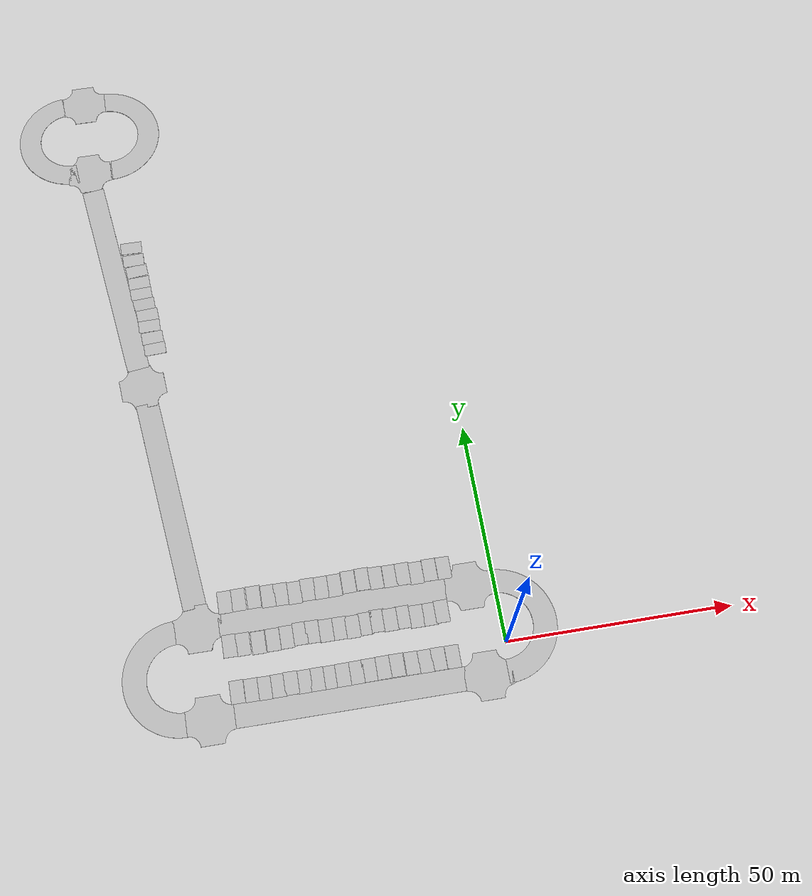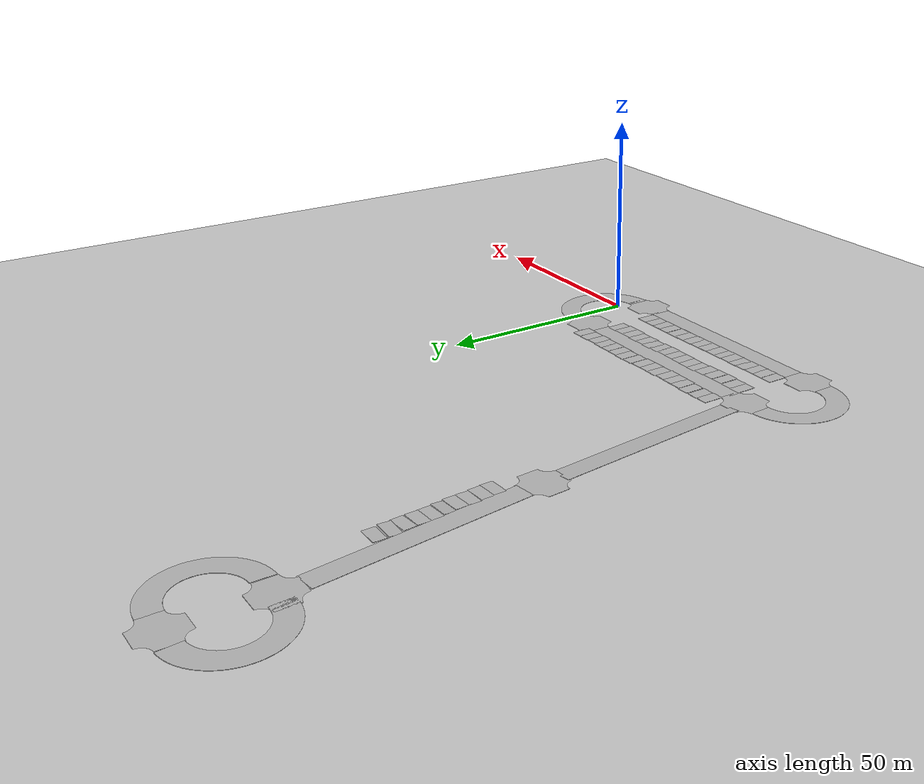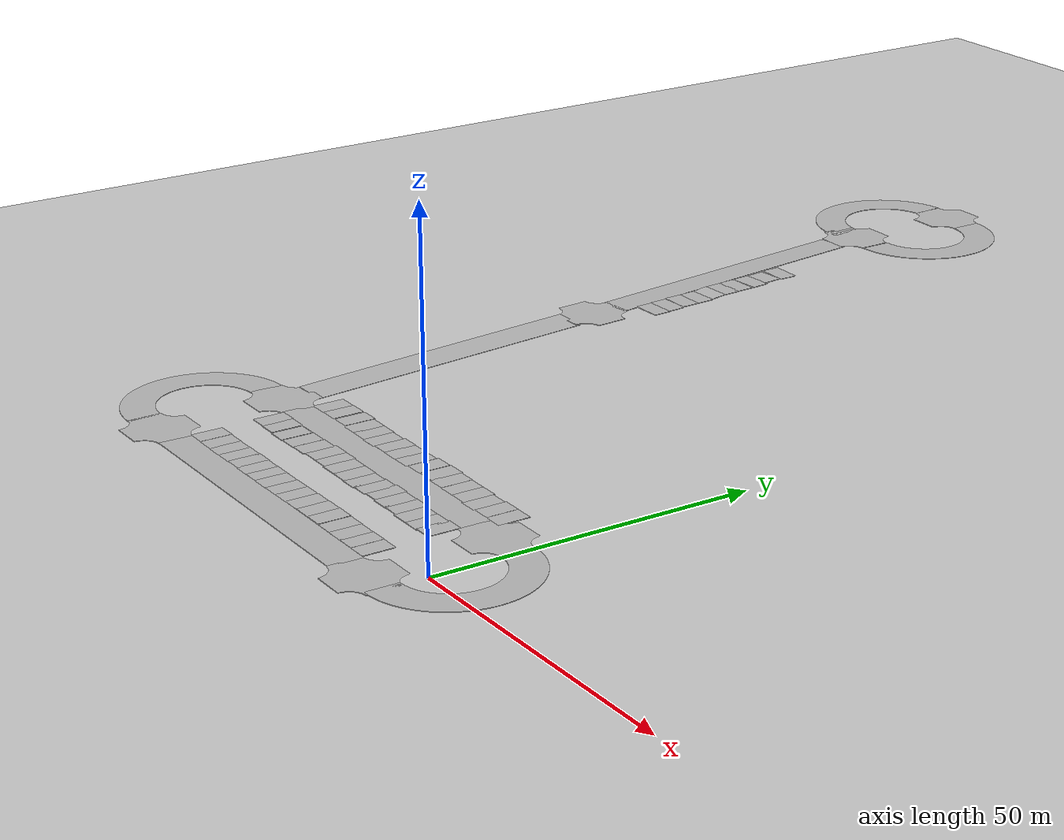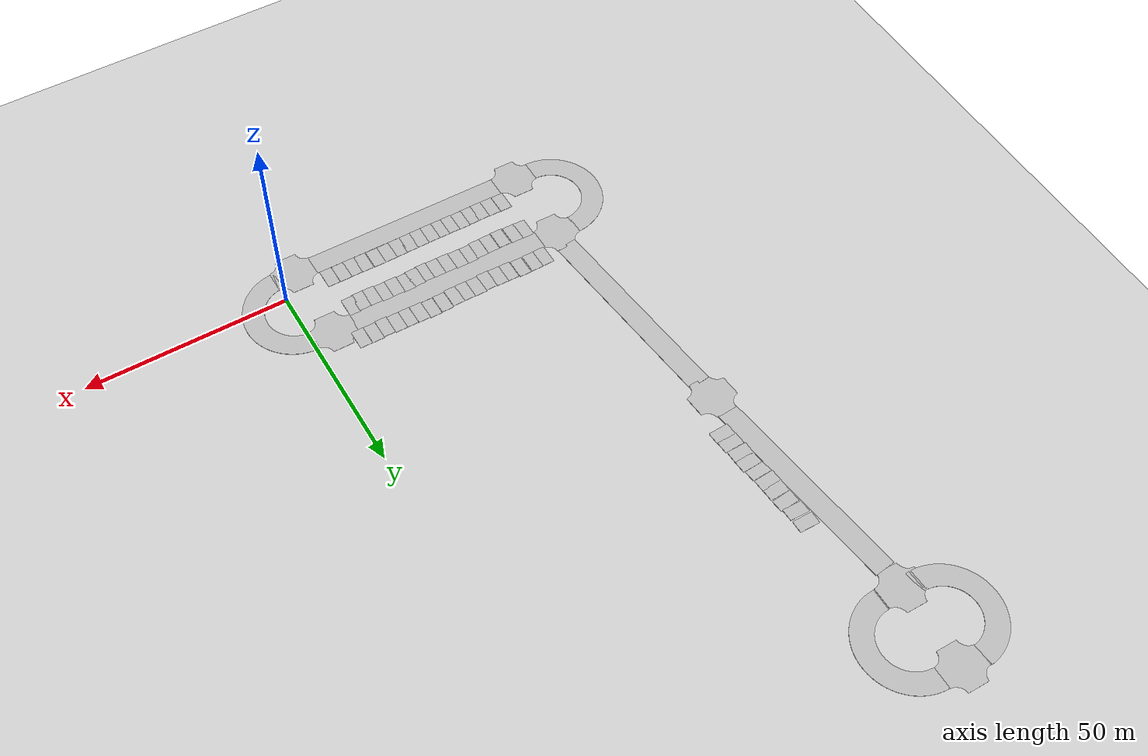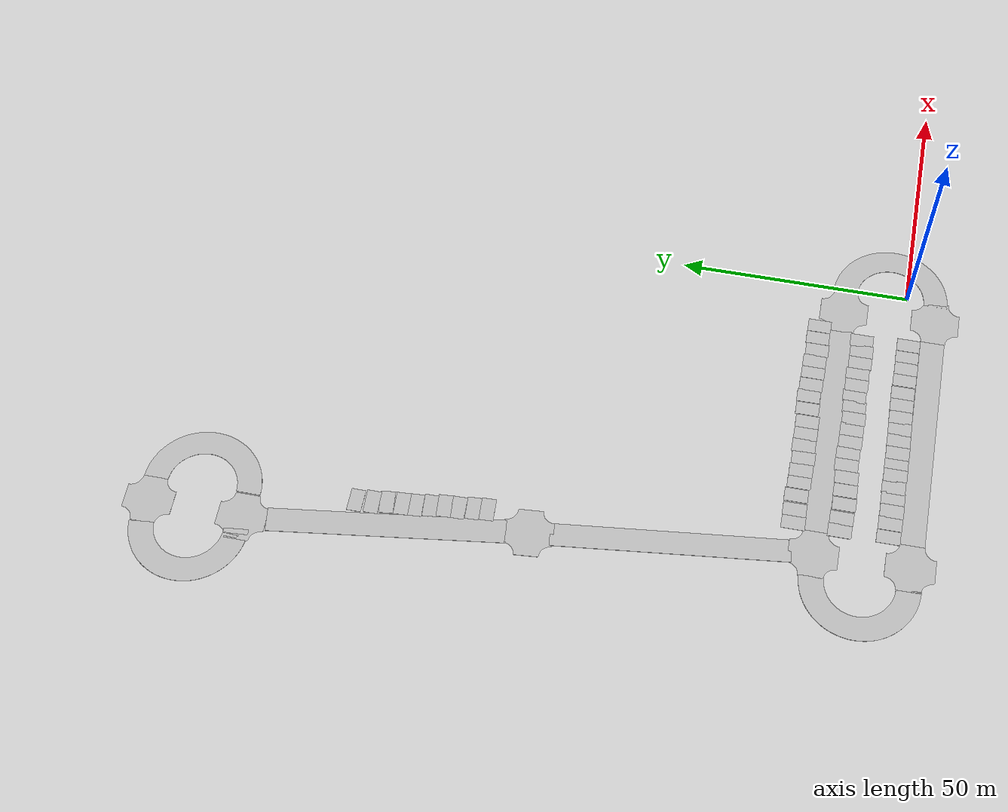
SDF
<sdf version="1.6">
 <world name="default">
  <light name="sun" type="directional">
   <pose>0 0 10 0 -0 0</pose>
   <diffuse>0.8 0.8 0.8 1</diffuse>
   <specular>0.2 0.2 0.2 1</specular>
   <attenuation>
    <range>1000</range>
    <constant>0.9</constant>
    <linear>0.01</linear>
    <quadratic>0.001</quadratic>
   </attenuation>
   <direction>-0.5 0.1 -0.9</direction>
  </light>
  <model name="ground_plane">
   <static>1</static>
   <link name="link">
    <collision name="collision">
     <geometry><plane><normal>0 0 1</normal><size>100 100</size></plane></geometry>
     <surface><friction><ode><mu>100</mu><mu2>50</mu2></ode></friction></surface>
    </collision>
    <visual name="visual">
     <cast_shadows>0</cast_shadows>
     <geometry><plane><normal>0 0 1</normal><size>100 100</size></plane></geometry>
     <material>
      <script><uri>file://media/materials/scripts/gazebo.material</uri><name>Gazebo/Grey</name></script>
     </material>
    </visual>
   </link>
  </model>
  <gravity>0 0 -9.8</gravity>
  <magnetic_field>6e-06 2.3e-05 -4.2e-05</magnetic_field>
  <atmosphere type="adiabatic"/>
  <physics name="default_physics" default="0" type="ode">
   <max_step_size>0.001</max_step_size>
   <real_time_factor>1</real_time_factor>
   <real_time_update_rate>1000</real_time_update_rate>
  </physics>
  <scene><ambient>0.4 0.4 0.4 1</ambient><background>0.7 0.7 0.7 1</background><shadows>1</shadows></scene>
  <spherical_coordinates>
   <surface_model>EARTH_WGS84</surface_model>
   <latitude_deg>0</latitude_deg>
   <longitude_deg>0</longitude_deg>
   <elevation>0</elevation>
   <heading_deg>0</heading_deg>
  </spherical_coordinates>
  <model name="curved_road_10">
   <pose>-0.754955 3.69079 0 0 -0 1.56526</pose>
   <static>1</static>
   <link name="link">
    <inertial>
     <mass>1</mass>
     <inertia><ixx>1</ixx><iyy>1</iyy><izz>1</izz><ixy>0</ixy><ixz>0</ixz><iyz>0</iyz></inertia>
    </inertial>
    <visual name="visual">
     <geometry><mesh><uri>model://curved_road_10/meshes/curved_road_10.dae</uri></mesh></geometry>
    </visual>
    <collision name="collision">
     <geometry><mesh><uri>model://curved_road_10/meshes/curved_road_10.dae</uri></mesh></geometry>
    </collision>
   </link>
  </model>
  <model name="road_intersection">
   <pose>-5.04531 -6.53328 0 0 -0 0</pose>
   <static>1</static>
   <link name="link">
    <visual name="visual">
     <geometry><mesh><uri>model://road_intersection/meshes/road_intersection.dae</uri></mesh></geometry>
    </visual>
    <collision name="collision">
     <geometry><mesh><uri>model://road_intersection/meshes/road_intersection.dae</uri></mesh></geometry>
    </collision>
   </link>
  </model>
  <model name="road_intersection_0">
   <pose>-5.69585 13.5013 0 0 -0 0</pose>
   <static>1</static>
   <link name="link">
    <visual name="visual">
     <geometry><mesh><uri>model://road_intersection/meshes/road_intersection.dae</uri></mesh></geometry>
    </visual>
    <collision name="collision">
     <geometry><mesh><uri>model://road_intersection/meshes/road_intersection.dae</uri></mesh></geometry>
    </collision>
   </link>
  </model>
  <model name="curved_road_10_clone">
   <pose>-69.9342 3.40294 0 0 0 -1.54574</pose>
   <static>1</static>
   <link name="link">
    <inertial>
     <mass>1</mass>
     <inertia><ixx>1</ixx><iyy>1</iyy><izz>1</izz><ixy>0</ixy><ixz>0</ixz><iyz>0</iyz></inertia>
    </inertial>
    <visual name="visual">
     <geometry><mesh><uri>model://curved_road_10/meshes/curved_road_10.dae</uri></mesh></geometry>
    </visual>
    <collision name="collision">
     <geometry><mesh><uri>model://curved_road_10/meshes/curved_road_10.dae</uri></mesh></geometry>
    </collision>
   </link>
  </model>
  <model name="straight_road_50">
   <pose>-34.8705 -6.43784 0 0 -0 0</pose>
   <static>1</static>
   <link name="link">
    <inertial>
     <mass>1</mass>
     <inertia><ixx>1</ixx><iyy>1</iyy><izz>1</izz><ixy>0</ixy><ixz>0</ixz><iyz>0</iyz></inertia>
    </inertial>
    <visual name="visual">
     <geometry><mesh><uri>model://straight_road_50/meshes/straight_road_50.dae</uri></mesh></geometry>
    </visual>
    <collision name="collision">
     <geometry><mesh><uri>model://straight_road_50/meshes/straight_road_50.dae</uri></mesh></geometry>
    </collision>
   </link>
  </model>
  <model name="straight_road_50_clone">
   <pose>-35.6675 13.5772 0 0 -0 0</pose>
   <static>1</static>
   <link name="link">
    <inertial>
     <mass>1</mass>
     <inertia><ixx>1</ixx><iyy>1</iyy><izz>1</izz><ixy>0</ixy><ixz>0</ixz><iyz>0</iyz></inertia>
    </inertial>
    <visual name="visual">
     <geometry><mesh><uri>model://straight_road_50/meshes/straight_road_50.dae</uri></mesh></geometry>
    </visual>
    <collision name="collision">
     <geometry><mesh><uri>model://straight_road_50/meshes/straight_road_50.dae</uri></mesh></geometry>
    </collision>
   </link>
  </model>
  <model name="road_intersection_1">
   <pose>-64.8358 -6.48301 0 0 -0 0</pose>
   <static>1</static>
   <link name="link">
    <visual name="visual">
     <geometry><mesh><uri>model://road_intersection/meshes/road_intersection.dae</uri></mesh></geometry>
    </visual>
    <collision name="collision">
     <geometry><mesh><uri>model://road_intersection/meshes/road_intersection.dae</uri></mesh></geometry>
    </collision>
   </link>
  </model>
  <model name="road_intersection_1_clone">
   <pose>-65.2288 13.5147 0 0 -0 0</pose>
   <static>1</static>
   <link name="link">
    <visual name="visual">
     <geometry><mesh><uri>model://road_intersection/meshes/road_intersection.dae</uri></mesh></geometry>
    </visual>
    <collision name="collision">
     <geometry><mesh><uri>model://road_intersection/meshes/road_intersection.dae</uri></mesh></geometry>
    </collision>
   </link>
  </model>
  <model name="selfdrive_loopintersectionpiece"><static>0</static><pose>-31.218 -57.5255 0 0 -0 0</pose></model>
  <model name="curved_road_10_0">
   <pose>-82.2491 141.88 0 0 0 -1.4755</pose>
   <static>1</static>
   <link name="link">
    <inertial>
     <mass>1</mass>
     <inertia><ixx>1</ixx><iyy>1</iyy><izz>1</izz><ixy>0</ixy><ixz>0</ixz><iyz>0</iyz></inertia>
    </inertial>
    <visual name="visual">
     <geometry><mesh><uri>model://curved_road_10/meshes/curved_road_10.dae</uri></mesh></geometry>
    </visual>
    <collision name="collision">
     <geometry><mesh><uri>model://curved_road_10/meshes/curved_road_10.dae</uri></mesh></geometry>
    </collision>
   </link>
  </model>
  <model name="road_intersection_2">
   <pose>-71.1744 72.1128 0 0 -0 0.075582</pose>
   <static>1</static>
   <link name="link">
    <visual name="visual">
     <geometry><mesh><uri>model://road_intersection/meshes/road_intersection.dae</uri></mesh></geometry>
    </visual>
    <collision name="collision">
     <geometry><mesh><uri>model://road_intersection/meshes/road_intersection.dae</uri></mesh></geometry>
    </collision>
   </link>
  </model>
  <model name="straight_road_50_0">
   <pose>-68.0077 42.8427 0 0.064804 -5e-05 1.67835</pose>
   <static>1</static>
   <link name="link">
    <inertial>
     <mass>1</mass>
     <inertia><ixx>1</ixx><iyy>1</iyy><izz>1</izz><ixy>0</ixy><ixz>0</ixz><iyz>0</iyz></inertia>
    </inertial>
    <visual name="visual">
     <geometry><mesh><uri>model://straight_road_50/meshes/straight_road_50.dae</uri></mesh></geometry>
    </visual>
    <collision name="collision">
     <geometry><mesh><uri>model://straight_road_50/meshes/straight_road_50.dae</uri></mesh></geometry>
    </collision>
   </link>
  </model>
  <model name="curved_road_10_0_clone">
   <pose>-72.899 141.644 0 0 -0 1.56773</pose>
   <static>1</static>
   <link name="link">
    <inertial>
     <mass>1</mass>
     <inertia><ixx>1</ixx><iyy>1</iyy><izz>1</izz><ixy>0</ixy><ixz>0</ixz><iyz>0</iyz></inertia>
    </inertial>
    <visual name="visual">
     <geometry><mesh><uri>model://curved_road_10/meshes/curved_road_10.dae</uri></mesh></geometry>
    </visual>
    <collision name="collision">
     <geometry><mesh><uri>model://curved_road_10/meshes/curved_road_10.dae</uri></mesh></geometry>
    </collision>
   </link>
  </model>
  <model name="straight_road_50_1">
   <pose>-74.8908 101.558 0 0 -0 1.69723</pose>
   <static>1</static>
   <link name="link">
    <inertial>
     <mass>1</mass>
     <inertia><ixx>1</ixx><iyy>1</iyy><izz>1</izz><ixy>0</ixy><ixz>0</ixz><iyz>0</iyz></inertia>
    </inertial>
    <visual name="visual">
     <geometry><mesh><uri>model://straight_road_50/meshes/straight_road_50.dae</uri></mesh></geometry>
    </visual>
    <collision name="collision">
     <geometry><mesh><uri>model://straight_road_50/meshes/straight_road_50.dae</uri></mesh></geometry>
    </collision>
   </link>
  </model>
  <model name="road_intersection_3">
   <pose>-78.3789 131.524 0 0 -0 0</pose>
   <static>1</static>
   <link name="link">
    <visual name="visual">
     <geometry><mesh><uri>model://road_intersection/meshes/road_intersection.dae</uri></mesh></geometry>
    </visual>
    <collision name="collision">
     <geometry><mesh><uri>model://road_intersection/meshes/road_intersection.dae</uri></mesh></geometry>
    </collision>
   </link>
  </model>
  <model name="road_intersection_4">
   <pose>-78.0165 151.708 0 0 -0 0</pose>
   <static>1</static>
   <link name="link">
    <visual name="visual">
     <geometry><mesh><uri>model://road_intersection/meshes/road_intersection.dae</uri></mesh></geometry>
    </visual>
    <collision name="collision">
     <geometry><mesh><uri>model://road_intersection/meshes/road_intersection.dae</uri></mesh></geometry>
    </collision>
   </link>
  </model>
  <model name="parking_space">
   <pose>-58.5422 -1.40767 0 0 -0 0</pose>
   <static>1</static>
   <link name="link">
    <inertial>
     <mass>1</mass>
     <inertia><ixx>1</ixx><iyy>1</iyy><izz>1</izz><ixy>0</ixy><ixz>0</ixz><iyz>0</iyz></inertia>
    </inertial>
    <visual name="visual">
     <geometry><mesh><uri>model://parking_space/meshes/parking_space.dae</uri></mesh></geometry>
    </visual>
    <collision name="collision">
     <geometry><mesh><uri>model://parking_space/meshes/parking_space.dae</uri></mesh></geometry>
    </collision>
   </link>
  </model>
  <model name="parking_space_clone">
   <pose>-55.4416 -1.49084 0 0 -0 0</pose>
   <static>1</static>
   <link name="link">
    <inertial>
     <mass>1</mass>
     <inertia><ixx>1</ixx><iyy>1</iyy><izz>1</izz><ixy>0</ixy><ixz>0</ixz><iyz>0</iyz></inertia>
    </inertial>
    <visual name="visual">
     <geometry><mesh><uri>model://parking_space/meshes/parking_space.dae</uri></mesh></geometry>
    </visual>
    <collision name="collision">
     <geometry><mesh><uri>model://parking_space/meshes/parking_space.dae</uri></mesh></geometry>
    </collision>
   </link>
  </model>
  <model name="parking_space_clone_0">
   <pose>-52.5122 -1.54116 0 0 -0 0</pose>
   <static>1</static>
   <link name="link">
    <inertial>
     <mass>1</mass>
     <inertia><ixx>1</ixx><iyy>1</iyy><izz>1</izz><ixy>0</ixy><ixz>0</ixz><iyz>0</iyz></inertia>
    </inertial>
    <visual name="visual">
     <geometry><mesh><uri>model://parking_space/meshes/parking_space.dae</uri></mesh></geometry>
    </visual>
    <collision name="collision">
     <geometry><mesh><uri>model://parking_space/meshes/parking_space.dae</uri></mesh></geometry>
    </collision>
   </link>
  </model>
  <model name="parking_space_clone_1">
   <pose>-49.6604 -1.48388 0 0 -0 0</pose>
   <static>1</static>
   <link name="link">
    <inertial>
     <mass>1</mass>
     <inertia><ixx>1</ixx><iyy>1</iyy><izz>1</izz><ixy>0</ixy><ixz>0</ixz><iyz>0</iyz></inertia>
    </inertial>
    <visual name="visual">
     <geometry><mesh><uri>model://parking_space/meshes/parking_space.dae</uri></mesh></geometry>
    </visual>
    <collision name="collision">
     <geometry><mesh><uri>model://parking_space/meshes/parking_space.dae</uri></mesh></geometry>
    </collision>
   </link>
  </model>
  <model name="parking_space_clone_2">
   <pose>-46.9115 -1.38805 0 0 -0 0</pose>
   <static>1</static>
   <link name="link">
    <inertial>
     <mass>1</mass>
     <inertia><ixx>1</ixx><iyy>1</iyy><izz>1</izz><ixy>0</ixy><ixz>0</ixz><iyz>0</iyz></inertia>
    </inertial>
    <visual name="visual">
     <geometry><mesh><uri>model://parking_space/meshes/parking_space.dae</uri></mesh></geometry>
    </visual>
    <collision name="collision">
     <geometry><mesh><uri>model://parking_space/meshes/parking_space.dae</uri></mesh></geometry>
    </collision>
   </link>
  </model>
  <model name="parking_space_clone_3">
   <pose>-44.1224 -1.49126 0 0 -0 0</pose>
   <static>1</static>
   <link name="link">
    <inertial>
     <mass>1</mass>
     <inertia><ixx>1</ixx><iyy>1</iyy><izz>1</izz><ixy>0</ixy><ixz>0</ixz><iyz>0</iyz></inertia>
    </inertial>
    <visual name="visual">
     <geometry><mesh><uri>model://parking_space/meshes/parking_space.dae</uri></mesh></geometry>
    </visual>
    <collision name="collision">
     <geometry><mesh><uri>model://parking_space/meshes/parking_space.dae</uri></mesh></geometry>
    </collision>
   </link>
  </model>
  <model name="parking_space_clone_4">
   <pose>-41.3311 -1.45068 0 0 -0 0</pose>
   <static>1</static>
   <link name="link">
    <inertial>
     <mass>1</mass>
     <inertia><ixx>1</ixx><iyy>1</iyy><izz>1</izz><ixy>0</ixy><ixz>0</ixz><iyz>0</iyz></inertia>
    </inertial>
    <visual name="visual">
     <geometry><mesh><uri>model://parking_space/meshes/parking_space.dae</uri></mesh></geometry>
    </visual>
    <collision name="collision">
     <geometry><mesh><uri>model://parking_space/meshes/parking_space.dae</uri></mesh></geometry>
    </collision>
   </link>
  </model>
  <model name="parking_space_clone_5">
   <pose>-38.709 -1.47861 0 0 -0 0</pose>
   <static>1</static>
   <link name="link">
    <inertial>
     <mass>1</mass>
     <inertia><ixx>1</ixx><iyy>1</iyy><izz>1</izz><ixy>0</ixy><ixz>0</ixz><iyz>0</iyz></inertia>
    </inertial>
    <visual name="visual">
     <geometry><mesh><uri>model://parking_space/meshes/parking_space.dae</uri></mesh></geometry>
    </visual>
    <collision name="collision">
     <geometry><mesh><uri>model://parking_space/meshes/parking_space.dae</uri></mesh></geometry>
    </collision>
   </link>
  </model>
  <model name="parking_space_clone_6">
   <pose>-35.7527 -1.42082 0 0 -0 0</pose>
   <static>1</static>
   <link name="link">
    <inertial>
     <mass>1</mass>
     <inertia><ixx>1</ixx><iyy>1</iyy><izz>1</izz><ixy>0</ixy><ixz>0</ixz><iyz>0</iyz></inertia>
    </inertial>
    <visual name="visual">
     <geometry><mesh><uri>model://parking_space/meshes/parking_space.dae</uri></mesh></geometry>
    </visual>
    <collision name="collision">
     <geometry><mesh><uri>model://parking_space/meshes/parking_space.dae</uri></mesh></geometry>
    </collision>
   </link>
  </model>
  <model name="parking_space_clone_7">
   <pose>-32.8175 -1.37494 0 0 -0 0</pose>
   <static>1</static>
   <link name="link">
    <inertial>
     <mass>1</mass>
     <inertia><ixx>1</ixx><iyy>1</iyy><izz>1</izz><ixy>0</ixy><ixz>0</ixz><iyz>0</iyz></inertia>
    </inertial>
    <visual name="visual">
     <geometry><mesh><uri>model://parking_space/meshes/parking_space.dae</uri></mesh></geometry>
    </visual>
    <collision name="collision">
     <geometry><mesh><uri>model://parking_space/meshes/parking_space.dae</uri></mesh></geometry>
    </collision>
   </link>
  </model>
  <model name="parking_space_clone_8">
   <pose>-30.0183 -1.31444 0 0 -0 0</pose>
   <static>1</static>
   <link name="link">
    <inertial>
     <mass>1</mass>
     <inertia><ixx>1</ixx><iyy>1</iyy><izz>1</izz><ixy>0</ixy><ixz>0</ixz><iyz>0</iyz></inertia>
    </inertial>
    <visual name="visual">
     <geometry><mesh><uri>model://parking_space/meshes/parking_space.dae</uri></mesh></geometry>
    </visual>
    <collision name="collision">
     <geometry><mesh><uri>model://parking_space/meshes/parking_space.dae</uri></mesh></geometry>
    </collision>
   </link>
  </model>
  <model name="parking_space_clone_9">
   <pose>-26.9917 -1.25658 0 0 -0 0</pose>
   <static>1</static>
   <link name="link">
    <inertial>
     <mass>1</mass>
     <inertia><ixx>1</ixx><iyy>1</iyy><izz>1</izz><ixy>0</ixy><ixz>0</ixz><iyz>0</iyz></inertia>
    </inertial>
    <visual name="visual">
     <geometry><mesh><uri>model://parking_space/meshes/parking_space.dae</uri></mesh></geometry>
    </visual>
    <collision name="collision">
     <geometry><mesh><uri>model://parking_space/meshes/parking_space.dae</uri></mesh></geometry>
    </collision>
   </link>
  </model>
  <model name="parking_space_clone_10">
   <pose>-23.9627 -1.22379 0 0 -0 0</pose>
   <static>1</static>
   <link name="link">
    <inertial>
     <mass>1</mass>
     <inertia><ixx>1</ixx><iyy>1</iyy><izz>1</izz><ixy>0</ixy><ixz>0</ixz><iyz>0</iyz></inertia>
    </inertial>
    <visual name="visual">
     <geometry><mesh><uri>model://parking_space/meshes/parking_space.dae</uri></mesh></geometry>
    </visual>
    <collision name="collision">
     <geometry><mesh><uri>model://parking_space/meshes/parking_space.dae</uri></mesh></geometry>
    </collision>
   </link>
  </model>
  <model name="parking_space_clone_11">
   <pose>-20.7694 -1.30636 0 0 -0 0</pose>
   <static>1</static>
   <link name="link">
    <inertial>
     <mass>1</mass>
     <inertia><ixx>1</ixx><iyy>1</iyy><izz>1</izz><ixy>0</ixy><ixz>0</ixz><iyz>0</iyz></inertia>
    </inertial>
    <visual name="visual">
     <geometry><mesh><uri>model://parking_space/meshes/parking_space.dae</uri></mesh></geometry>
    </visual>
    <collision name="collision">
     <geometry><mesh><uri>model://parking_space/meshes/parking_space.dae</uri></mesh></geometry>
    </collision>
   </link>
  </model>
  <model name="parking_space_clone_12">
   <pose>-17.8071 -1.35544 0 0 -0 0</pose>
   <static>1</static>
   <link name="link">
    <inertial>
     <mass>1</mass>
     <inertia><ixx>1</ixx><iyy>1</iyy><izz>1</izz><ixy>0</ixy><ixz>0</ixz><iyz>0</iyz></inertia>
    </inertial>
    <visual name="visual">
     <geometry><mesh><uri>model://parking_space/meshes/parking_space.dae</uri></mesh></geometry>
    </visual>
    <collision name="collision">
     <geometry><mesh><uri>model://parking_space/meshes/parking_space.dae</uri></mesh></geometry>
    </collision>
   </link>
  </model>
  <model name="parking_space_clone_13">
   <pose>-14.9463 -1.29967 0 0 -0 0</pose>
   <static>1</static>
   <link name="link">
    <inertial>
     <mass>1</mass>
     <inertia><ixx>1</ixx><iyy>1</iyy><izz>1</izz><ixy>0</ixy><ixz>0</ixz><iyz>0</iyz></inertia>
    </inertial>
    <visual name="visual">
     <geometry><mesh><uri>model://parking_space/meshes/parking_space.dae</uri></mesh></geometry>
    </visual>
    <collision name="collision">
     <geometry><mesh><uri>model://parking_space/meshes/parking_space.dae</uri></mesh></geometry>
    </collision>
   </link>
  </model>
  <model name="parking_space_clone_14">
   <pose>-11.8667 -1.33085 0 0 -0 0</pose>
   <static>1</static>
   <link name="link">
    <inertial>
     <mass>1</mass>
     <inertia><ixx>1</ixx><iyy>1</iyy><izz>1</izz><ixy>0</ixy><ixz>0</ixz><iyz>0</iyz></inertia>
    </inertial>
    <visual name="visual">
     <geometry><mesh><uri>model://parking_space/meshes/parking_space.dae</uri></mesh></geometry>
    </visual>
    <collision name="collision">
     <geometry><mesh><uri>model://parking_space/meshes/parking_space.dae</uri></mesh></geometry>
    </collision>
   </link>
  </model>
  <model name="parking_space_clone_15">
   <pose>-58.9185 8.68725 0 0 -0 0</pose>
   <static>1</static>
   <link name="link">
    <inertial>
     <mass>1</mass>
     <inertia><ixx>1</ixx><iyy>1</iyy><izz>1</izz><ixy>0</ixy><ixz>0</ixz><iyz>0</iyz></inertia>
    </inertial>
    <visual name="visual">
     <geometry><mesh><uri>model://parking_space/meshes/parking_space.dae</uri></mesh></geometry>
    </visual>
    <collision name="collision">
     <geometry><mesh><uri>model://parking_space/meshes/parking_space.dae</uri></mesh></geometry>
    </collision>
   </link>
  </model>
  <model name="parking_space_clone_16">
   <pose>-55.9847 8.59278 0 0 -0 0</pose>
   <static>1</static>
   <link name="link">
    <inertial>
     <mass>1</mass>
     <inertia><ixx>1</ixx><iyy>1</iyy><izz>1</izz><ixy>0</ixy><ixz>0</ixz><iyz>0</iyz></inertia>
    </inertial>
    <visual name="visual">
     <geometry><mesh><uri>model://parking_space/meshes/parking_space.dae</uri></mesh></geometry>
    </visual>
    <collision name="collision">
     <geometry><mesh><uri>model://parking_space/meshes/parking_space.dae</uri></mesh></geometry>
    </collision>
   </link>
  </model>
  <model name="parking_space_clone_17">
   <pose>-52.6925 8.4193 0 0 -0 0</pose>
   <static>1</static>
   <link name="link">
    <inertial>
     <mass>1</mass>
     <inertia><ixx>1</ixx><iyy>1</iyy><izz>1</izz><ixy>0</ixy><ixz>0</ixz><iyz>0</iyz></inertia>
    </inertial>
    <visual name="visual">
     <geometry><mesh><uri>model://parking_space/meshes/parking_space.dae</uri></mesh></geometry>
    </visual>
    <collision name="collision">
     <geometry><mesh><uri>model://parking_space/meshes/parking_space.dae</uri></mesh></geometry>
    </collision>
   </link>
  </model>
  <model name="parking_space_clone_18">
   <pose>-49.4971 8.51674 0 0 -0 0</pose>
   <static>1</static>
   <link name="link">
    <inertial>
     <mass>1</mass>
     <inertia><ixx>1</ixx><iyy>1</iyy><izz>1</izz><ixy>0</ixy><ixz>0</ixz><iyz>0</iyz></inertia>
    </inertial>
    <visual name="visual">
     <geometry><mesh><uri>model://parking_space/meshes/parking_space.dae</uri></mesh></geometry>
    </visual>
    <collision name="collision">
     <geometry><mesh><uri>model://parking_space/meshes/parking_space.dae</uri></mesh></geometry>
    </collision>
   </link>
  </model>
  <model name="parking_space_clone_19">
   <pose>-46.4326 8.61542 0 0 -0 0</pose>
   <static>1</static>
   <link name="link">
    <inertial>
     <mass>1</mass>
     <inertia><ixx>1</ixx><iyy>1</iyy><izz>1</izz><ixy>0</ixy><ixz>0</ixz><iyz>0</iyz></inertia>
    </inertial>
    <visual name="visual">
     <geometry><mesh><uri>model://parking_space/meshes/parking_space.dae</uri></mesh></geometry>
    </visual>
    <collision name="collision">
     <geometry><mesh><uri>model://parking_space/meshes/parking_space.dae</uri></mesh></geometry>
    </collision>
   </link>
  </model>
  <model name="parking_space_clone_20">
   <pose>-43.5275 8.92241 0 0 -0 0</pose>
   <static>1</static>
   <link name="link">
    <inertial>
     <mass>1</mass>
     <inertia><ixx>1</ixx><iyy>1</iyy><izz>1</izz><ixy>0</ixy><ixz>0</ixz><iyz>0</iyz></inertia>
    </inertial>
    <visual name="visual">
     <geometry><mesh><uri>model://parking_space/meshes/parking_space.dae</uri></mesh></geometry>
    </visual>
    <collision name="collision">
     <geometry><mesh><uri>model://parking_space/meshes/parking_space.dae</uri></mesh></geometry>
    </collision>
   </link>
  </model>
  <model name="parking_space_clone_21">
   <pose>-40.8038 8.88359 0 0 -0 0</pose>
   <static>1</static>
   <link name="link">
    <inertial>
     <mass>1</mass>
     <inertia><ixx>1</ixx><iyy>1</iyy><izz>1</izz><ixy>0</ixy><ixz>0</ixz><iyz>0</iyz></inertia>
    </inertial>
    <visual name="visual">
     <geometry><mesh><uri>model://parking_space/meshes/parking_space.dae</uri></mesh></geometry>
    </visual>
    <collision name="collision">
     <geometry><mesh><uri>model://parking_space/meshes/parking_space.dae</uri></mesh></geometry>
    </collision>
   </link>
  </model>
  <model name="parking_space_clone_22">
   <pose>-37.8514 8.69578 0 0 -0 0</pose>
   <static>1</static>
   <link name="link">
    <inertial>
     <mass>1</mass>
     <inertia><ixx>1</ixx><iyy>1</iyy><izz>1</izz><ixy>0</ixy><ixz>0</ixz><iyz>0</iyz></inertia>
    </inertial>
    <visual name="visual">
     <geometry><mesh><uri>model://parking_space/meshes/parking_space.dae</uri></mesh></geometry>
    </visual>
    <collision name="collision">
     <geometry><mesh><uri>model://parking_space/meshes/parking_space.dae</uri></mesh></geometry>
    </collision>
   </link>
  </model>
  <model name="parking_space_clone_23">
   <pose>-34.8392 8.69574 0 0 -0 0</pose>
   <static>1</static>
   <link name="link">
    <inertial>
     <mass>1</mass>
     <inertia><ixx>1</ixx><iyy>1</iyy><izz>1</izz><ixy>0</ixy><ixz>0</ixz><iyz>0</iyz></inertia>
    </inertial>
    <visual name="visual">
     <geometry><mesh><uri>model://parking_space/meshes/parking_space.dae</uri></mesh></geometry>
    </visual>
    <collision name="collision">
     <geometry><mesh><uri>model://parking_space/meshes/parking_space.dae</uri></mesh></geometry>
    </collision>
   </link>
  </model>
  <model name="parking_space_clone_24">
   <pose>-32.0617 8.57935 0 0 -0 0</pose>
   <static>1</static>
   <link name="link">
    <inertial>
     <mass>1</mass>
     <inertia><ixx>1</ixx><iyy>1</iyy><izz>1</izz><ixy>0</ixy><ixz>0</ixz><iyz>0</iyz></inertia>
    </inertial>
    <visual name="visual">
     <geometry><mesh><uri>model://parking_space/meshes/parking_space.dae</uri></mesh></geometry>
    </visual>
    <collision name="collision">
     <geometry><mesh><uri>model://parking_space/meshes/parking_space.dae</uri></mesh></geometry>
    </collision>
   </link>
  </model>
  <model name="parking_space_clone_25">
   <pose>-29.3043 8.77246 0 0 -0 0</pose>
   <static>1</static>
   <link name="link">
    <inertial>
     <mass>1</mass>
     <inertia><ixx>1</ixx><iyy>1</iyy><izz>1</izz><ixy>0</ixy><ixz>0</ixz><iyz>0</iyz></inertia>
    </inertial>
    <visual name="visual">
     <geometry><mesh><uri>model://parking_space/meshes/parking_space.dae</uri></mesh></geometry>
    </visual>
    <collision name="collision">
     <geometry><mesh><uri>model://parking_space/meshes/parking_space.dae</uri></mesh></geometry>
    </collision>
   </link>
  </model>
  <model name="parking_space_clone_26">
   <pose>-26.5839 9.01574 0 0 -0 0</pose>
   <static>1</static>
   <link name="link">
    <inertial>
     <mass>1</mass>
     <inertia><ixx>1</ixx><iyy>1</iyy><izz>1</izz><ixy>0</ixy><ixz>0</ixz><iyz>0</iyz></inertia>
    </inertial>
    <visual name="visual">
     <geometry><mesh><uri>model://parking_space/meshes/parking_space.dae</uri></mesh></geometry>
    </visual>
    <collision name="collision">
     <geometry><mesh><uri>model://parking_space/meshes/parking_space.dae</uri></mesh></geometry>
    </collision>
   </link>
  </model>
  <model name="parking_space_clone_27">
   <pose>-23.7974 8.81128 0 0 -0 0</pose>
   <static>1</static>
   <link name="link">
    <inertial>
     <mass>1</mass>
     <inertia><ixx>1</ixx><iyy>1</iyy><izz>1</izz><ixy>0</ixy><ixz>0</ixz><iyz>0</iyz></inertia>
    </inertial>
    <visual name="visual">
     <geometry><mesh><uri>model://parking_space/meshes/parking_space.dae</uri></mesh></geometry>
    </visual>
    <collision name="collision">
     <geometry><mesh><uri>model://parking_space/meshes/parking_space.dae</uri></mesh></geometry>
    </collision>
   </link>
  </model>
  <model name="parking_space_clone_28">
   <pose>-21.0457 8.90877 0 0 -0 0</pose>
   <static>1</static>
   <link name="link">
    <inertial>
     <mass>1</mass>
     <inertia><ixx>1</ixx><iyy>1</iyy><izz>1</izz><ixy>0</ixy><ixz>0</ixz><iyz>0</iyz></inertia>
    </inertial>
    <visual name="visual">
     <geometry><mesh><uri>model://parking_space/meshes/parking_space.dae</uri></mesh></geometry>
    </visual>
    <collision name="collision">
     <geometry><mesh><uri>model://parking_space/meshes/parking_space.dae</uri></mesh></geometry>
    </collision>
   </link>
  </model>
  <model name="parking_space_clone_29">
   <pose>-18.0566 8.62869 0 0 -0 0</pose>
   <static>1</static>
   <link name="link">
    <inertial>
     <mass>1</mass>
     <inertia><ixx>1</ixx><iyy>1</iyy><izz>1</izz><ixy>0</ixy><ixz>0</ixz><iyz>0</iyz></inertia>
    </inertial>
    <visual name="visual">
     <geometry><mesh><uri>model://parking_space/meshes/parking_space.dae</uri></mesh></geometry>
    </visual>
    <collision name="collision">
     <geometry><mesh><uri>model://parking_space/meshes/parking_space.dae</uri></mesh></geometry>
    </collision>
   </link>
  </model>
  <model name="parking_space_clone_30">
   <pose>-15.0969 8.63212 0 0 -0 0</pose>
   <static>1</static>
   <link name="link">
    <inertial>
     <mass>1</mass>
     <inertia><ixx>1</ixx><iyy>1</iyy><izz>1</izz><ixy>0</ixy><ixz>0</ixz><iyz>0</iyz></inertia>
    </inertial>
    <visual name="visual">
     <geometry><mesh><uri>model://parking_space/meshes/parking_space.dae</uri></mesh></geometry>
    </visual>
    <collision name="collision">
     <geometry><mesh><uri>model://parking_space/meshes/parking_space.dae</uri></mesh></geometry>
    </collision>
   </link>
  </model>
  <model name="parking_space_clone_31">
   <pose>-12.458 8.83933 0 0 -0 0</pose>
   <static>1</static>
   <link name="link">
    <inertial>
     <mass>1</mass>
     <inertia><ixx>1</ixx><iyy>1</iyy><izz>1</izz><ixy>0</ixy><ixz>0</ixz><iyz>0</iyz></inertia>
    </inertial>
    <visual name="visual">
     <geometry><mesh><uri>model://parking_space/meshes/parking_space.dae</uri></mesh></geometry>
    </visual>
    <collision name="collision">
     <geometry><mesh><uri>model://parking_space/meshes/parking_space.dae</uri></mesh></geometry>
    </collision>
   </link>
  </model>
  <model name="parking_space_clone_32">
   <pose>-49.2838 18.2711 0 0 -0 0</pose>
   <static>1</static>
   <link name="link">
    <inertial>
     <mass>1</mass>
     <inertia><ixx>1</ixx><iyy>1</iyy><izz>1</izz><ixy>0</ixy><ixz>0</ixz><iyz>0</iyz></inertia>
    </inertial>
    <visual name="visual">
     <geometry><mesh><uri>model://parking_space/meshes/parking_space.dae</uri></mesh></geometry>
    </visual>
    <collision name="collision">
     <geometry><mesh><uri>model://parking_space/meshes/parking_space.dae</uri></mesh></geometry>
    </collision>
   </link>
  </model>
  <model name="parking_space_clone_33">
   <pose>-46.4516 18.2364 0 0 -0 0</pose>
   <static>1</static>
   <link name="link">
    <inertial>
     <mass>1</mass>
     <inertia><ixx>1</ixx><iyy>1</iyy><izz>1</izz><ixy>0</ixy><ixz>0</ixz><iyz>0</iyz></inertia>
    </inertial>
    <visual name="visual">
     <geometry><mesh><uri>model://parking_space/meshes/parking_space.dae</uri></mesh></geometry>
    </visual>
    <collision name="collision">
     <geometry><mesh><uri>model://parking_space/meshes/parking_space.dae</uri></mesh></geometry>
    </collision>
   </link>
  </model>
  <model name="parking_space_clone_34">
   <pose>-43.4732 18.0837 0 0 -0 0</pose>
   <static>1</static>
   <link name="link">
    <inertial>
     <mass>1</mass>
     <inertia><ixx>1</ixx><iyy>1</iyy><izz>1</izz><ixy>0</ixy><ixz>0</ixz><iyz>0</iyz></inertia>
    </inertial>
    <visual name="visual">
     <geometry><mesh><uri>model://parking_space/meshes/parking_space.dae</uri></mesh></geometry>
    </visual>
    <collision name="collision">
     <geometry><mesh><uri>model://parking_space/meshes/parking_space.dae</uri></mesh></geometry>
    </collision>
   </link>
  </model>
  <model name="parking_space_clone_35">
   <pose>-40.5115 18.3336 0 0 -0 0</pose>
   <static>1</static>
   <link name="link">
    <inertial>
     <mass>1</mass>
     <inertia><ixx>1</ixx><iyy>1</iyy><izz>1</izz><ixy>0</ixy><ixz>0</ixz><iyz>0</iyz></inertia>
    </inertial>
    <visual name="visual">
     <geometry><mesh><uri>model://parking_space/meshes/parking_space.dae</uri></mesh></geometry>
    </visual>
    <collision name="collision">
     <geometry><mesh><uri>model://parking_space/meshes/parking_space.dae</uri></mesh></geometry>
    </collision>
   </link>
  </model>
  <model name="parking_space_clone_36">
   <pose>-37.5822 18.2703 0 0 -0 0</pose>
   <static>1</static>
   <link name="link">
    <inertial>
     <mass>1</mass>
     <inertia><ixx>1</ixx><iyy>1</iyy><izz>1</izz><ixy>0</ixy><ixz>0</ixz><iyz>0</iyz></inertia>
    </inertial>
    <visual name="visual">
     <geometry><mesh><uri>model://parking_space/meshes/parking_space.dae</uri></mesh></geometry>
    </visual>
    <collision name="collision">
     <geometry><mesh><uri>model://parking_space/meshes/parking_space.dae</uri></mesh></geometry>
    </collision>
   </link>
  </model>
  <model name="parking_space_clone_37">
   <pose>-34.6268 18.2943 0 0 -0 0</pose>
   <static>1</static>
   <link name="link">
    <inertial>
     <mass>1</mass>
     <inertia><ixx>1</ixx><iyy>1</iyy><izz>1</izz><ixy>0</ixy><ixz>0</ixz><iyz>0</iyz></inertia>
    </inertial>
    <visual name="visual">
     <geometry><mesh><uri>model://parking_space/meshes/parking_space.dae</uri></mesh></geometry>
    </visual>
    <collision name="collision">
     <geometry><mesh><uri>model://parking_space/meshes/parking_space.dae</uri></mesh></geometry>
    </collision>
   </link>
  </model>
  <model name="parking_space_clone_38">
   <pose>-31.4837 18.6018 0 0 -0 0</pose>
   <static>1</static>
   <link name="link">
    <inertial>
     <mass>1</mass>
     <inertia><ixx>1</ixx><iyy>1</iyy><izz>1</izz><ixy>0</ixy><ixz>0</ixz><iyz>0</iyz></inertia>
    </inertial>
    <visual name="visual">
     <geometry><mesh><uri>model://parking_space/meshes/parking_space.dae</uri></mesh></geometry>
    </visual>
    <collision name="collision">
     <geometry><mesh><uri>model://parking_space/meshes/parking_space.dae</uri></mesh></geometry>
    </collision>
   </link>
  </model>
  <model name="parking_space_clone_39">
   <pose>-28.3409 18.7168 0 0 -0 0</pose>
   <static>1</static>
   <link name="link">
    <inertial>
     <mass>1</mass>
     <inertia><ixx>1</ixx><iyy>1</iyy><izz>1</izz><ixy>0</ixy><ixz>0</ixz><iyz>0</iyz></inertia>
    </inertial>
    <visual name="visual">
     <geometry><mesh><uri>model://parking_space/meshes/parking_space.dae</uri></mesh></geometry>
    </visual>
    <collision name="collision">
     <geometry><mesh><uri>model://parking_space/meshes/parking_space.dae</uri></mesh></geometry>
    </collision>
   </link>
  </model>
  <model name="parking_space_clone_40">
   <pose>-25.3894 18.5206 0 0 -0 0</pose>
   <static>1</static>
   <link name="link">
    <inertial>
     <mass>1</mass>
     <inertia><ixx>1</ixx><iyy>1</iyy><izz>1</izz><ixy>0</ixy><ixz>0</ixz><iyz>0</iyz></inertia>
    </inertial>
    <visual name="visual">
     <geometry><mesh><uri>model://parking_space/meshes/parking_space.dae</uri></mesh></geometry>
    </visual>
    <collision name="collision">
     <geometry><mesh><uri>model://parking_space/meshes/parking_space.dae</uri></mesh></geometry>
    </collision>
   </link>
  </model>
  <model name="parking_space_clone_41">
   <pose>-22.3023 18.4455 0 0 -0 0</pose>
   <static>1</static>
   <link name="link">
    <inertial>
     <mass>1</mass>
     <inertia><ixx>1</ixx><iyy>1</iyy><izz>1</izz><ixy>0</ixy><ixz>0</ixz><iyz>0</iyz></inertia>
    </inertial>
    <visual name="visual">
     <geometry><mesh><uri>model://parking_space/meshes/parking_space.dae</uri></mesh></geometry>
    </visual>
    <collision name="collision">
     <geometry><mesh><uri>model://parking_space/meshes/parking_space.dae</uri></mesh></geometry>
    </collision>
   </link>
  </model>
  <model name="parking_space_clone_42">
   <pose>-19.4492 18.4589 0 0 -0 0</pose>
   <static>1</static>
   <link name="link">
    <inertial>
     <mass>1</mass>
     <inertia><ixx>1</ixx><iyy>1</iyy><izz>1</izz><ixy>0</ixy><ixz>0</ixz><iyz>0</iyz></inertia>
    </inertial>
    <visual name="visual">
     <geometry><mesh><uri>model://parking_space/meshes/parking_space.dae</uri></mesh></geometry>
    </visual>
    <collision name="collision">
     <geometry><mesh><uri>model://parking_space/meshes/parking_space.dae</uri></mesh></geometry>
    </collision>
   </link>
  </model>
  <model name="parking_space_clone_43">
   <pose>-16.5068 18.218 0 0 -0 0</pose>
   <static>1</static>
   <link name="link">
    <inertial>
     <mass>1</mass>
     <inertia><ixx>1</ixx><iyy>1</iyy><izz>1</izz><ixy>0</ixy><ixz>0</ixz><iyz>0</iyz></inertia>
    </inertial>
    <visual name="visual">
     <geometry><mesh><uri>model://parking_space/meshes/parking_space.dae</uri></mesh></geometry>
    </visual>
    <collision name="collision">
     <geometry><mesh><uri>model://parking_space/meshes/parking_space.dae</uri></mesh></geometry>
    </collision>
   </link>
  </model>
  <model name="parking_space_clone_44">
   <pose>-13.4525 18.4224 0 0 -0 0</pose>
   <static>1</static>
   <link name="link">
    <inertial>
     <mass>1</mass>
     <inertia><ixx>1</ixx><iyy>1</iyy><izz>1</izz><ixy>0</ixy><ixz>0</ixz><iyz>0</iyz></inertia>
    </inertial>
    <visual name="visual">
     <geometry><mesh><uri>model://parking_space/meshes/parking_space.dae</uri></mesh></geometry>
    </visual>
    <collision name="collision">
     <geometry><mesh><uri>model://parking_space/meshes/parking_space.dae</uri></mesh></geometry>
    </collision>
   </link>
  </model>
  <model name="parking_space_clone_45">
   <pose>-10.3644 18.3711 0 0 -0 0</pose>
   <static>1</static>
   <link name="link">
    <inertial>
     <mass>1</mass>
     <inertia><ixx>1</ixx><iyy>1</iyy><izz>1</izz><ixy>0</ixy><ixz>0</ixz><iyz>0</iyz></inertia>
    </inertial>
    <visual name="visual">
     <geometry><mesh><uri>model://parking_space/meshes/parking_space.dae</uri></mesh></geometry>
    </visual>
    <collision name="collision">
     <geometry><mesh><uri>model://parking_space/meshes/parking_space.dae</uri></mesh></geometry>
    </collision>
   </link>
  </model>
  <model name="parking_space_clone_46">
   <pose>-52.45 18.534 0 0 -0 0</pose>
   <static>1</static>
   <link name="link">
    <inertial>
     <mass>1</mass>
     <inertia><ixx>1</ixx><iyy>1</iyy><izz>1</izz><ixy>0</ixy><ixz>0</ixz><iyz>0</iyz></inertia>
    </inertial>
    <visual name="visual">
     <geometry><mesh><uri>model://parking_space/meshes/parking_space.dae</uri></mesh></geometry>
    </visual>
    <collision name="collision">
     <geometry><mesh><uri>model://parking_space/meshes/parking_space.dae</uri></mesh></geometry>
    </collision>
   </link>
  </model>
  <model name="parking_space_clone_47">
   <pose>-55.7667 18.4769 0 0 -0 0</pose>
   <static>1</static>
   <link name="link">
    <inertial>
     <mass>1</mass>
     <inertia><ixx>1</ixx><iyy>1</iyy><izz>1</izz><ixy>0</ixy><ixz>0</ixz><iyz>0</iyz></inertia>
    </inertial>
    <visual name="visual">
     <geometry><mesh><uri>model://parking_space/meshes/parking_space.dae</uri></mesh></geometry>
    </visual>
    <collision name="collision">
     <geometry><mesh><uri>model://parking_space/meshes/parking_space.dae</uri></mesh></geometry>
    </collision>
   </link>
  </model>
  <model name="parking_space_clone_48">
   <pose>-58.7754 18.3951 0 0 -0 0</pose>
   <static>1</static>
   <link name="link">
    <inertial>
     <mass>1</mass>
     <inertia><ixx>1</ixx><iyy>1</iyy><izz>1</izz><ixy>0</ixy><ixz>0</ixz><iyz>0</iyz></inertia>
    </inertial>
    <visual name="visual">
     <geometry><mesh><uri>model://parking_space/meshes/parking_space.dae</uri></mesh></geometry>
    </visual>
    <collision name="collision">
     <geometry><mesh><uri>model://parking_space/meshes/parking_space.dae</uri></mesh></geometry>
    </collision>
   </link>
  </model>
  <model name="parking_space_clone_49">
   <pose>-67.4529 81.5 0 0 -0 1.6117</pose>
   <static>1</static>
   <link name="link">
    <inertial>
     <mass>1</mass>
     <inertia><ixx>1</ixx><iyy>1</iyy><izz>1</izz><ixy>0</ixy><ixz>0</ixz><iyz>0</iyz></inertia>
    </inertial>
    <visual name="visual">
     <geometry><mesh><uri>model://parking_space/meshes/parking_space.dae</uri></mesh></geometry>
    </visual>
    <collision name="collision">
     <geometry><mesh><uri>model://parking_space/meshes/parking_space.dae</uri></mesh></geometry>
    </collision>
   </link>
  </model>
  <model name="parking_space_clone_50">
   <pose>-68.7981 93.3622 0 -0.004268 -0.077109 1.62615</pose>
   <static>1</static>
   <link name="link">
    <inertial>
     <mass>1</mass>
     <inertia><ixx>1</ixx><iyy>1</iyy><izz>1</izz><ixy>0</ixy><ixz>0</ixz><iyz>0</iyz></inertia>
    </inertial>
    <visual name="visual">
     <geometry><mesh><uri>model://parking_space/meshes/parking_space.dae</uri></mesh></geometry>
    </visual>
    <collision name="collision">
     <geometry><mesh><uri>model://parking_space/meshes/parking_space.dae</uri></mesh></geometry>
    </collision>
   </link>
  </model>
  <model name="parking_space_clone_51">
   <pose>-69.1909 96.4464 0 0 0 -1.50921</pose>
   <static>1</static>
   <link name="link">
    <inertial>
     <mass>1</mass>
     <inertia><ixx>1</ixx><iyy>1</iyy><izz>1</izz><ixy>0</ixy><ixz>0</ixz><iyz>0</iyz></inertia>
    </inertial>
    <visual name="visual">
     <geometry><mesh><uri>model://parking_space/meshes/parking_space.dae</uri></mesh></geometry>
    </visual>
    <collision name="collision">
     <geometry><mesh><uri>model://parking_space/meshes/parking_space.dae</uri></mesh></geometry>
    </collision>
   </link>
  </model>
  <model name="parking_space_clone_59">
   <pose>-69.6246 102.531 0 0 -0 1.66978</pose>
   <static>1</static>
   <link name="link">
    <inertial>
     <mass>1</mass>
     <inertia><ixx>1</ixx><iyy>1</iyy><izz>1</izz><ixy>0</ixy><ixz>0</ixz><iyz>0</iyz></inertia>
    </inertial>
    <visual name="visual">
     <geometry><mesh><uri>model://parking_space/meshes/parking_space.dae</uri></mesh></geometry>
    </visual>
    <collision name="collision">
     <geometry><mesh><uri>model://parking_space/meshes/parking_space.dae</uri></mesh></geometry>
    </collision>
   </link>
  </model>
  <model name="parking_space_clone_60">
   <pose>-68.2842 90.4861 0 0 -0 1.63181</pose>
   <static>1</static>
   <link name="link">
    <inertial>
     <mass>1</mass>
     <inertia><ixx>1</ixx><iyy>1</iyy><izz>1</izz><ixy>0</ixy><ixz>0</ixz><iyz>0</iyz></inertia>
    </inertial>
    <visual name="visual">
     <geometry><mesh><uri>model://parking_space/meshes/parking_space.dae</uri></mesh></geometry>
    </visual>
    <collision name="collision">
     <geometry><mesh><uri>model://parking_space/meshes/parking_space.dae</uri></mesh></geometry>
    </collision>
   </link>
  </model>
  <model name="parking_space_clone_61">
   <pose>-69.3884 99.3255 0 0 -0 1.61632</pose>
   <static>1</static>
   <link name="link">
    <inertial>
     <mass>1</mass>
     <inertia><ixx>1</ixx><iyy>1</iyy><izz>1</izz><ixy>0</ixy><ixz>0</ixz><iyz>0</iyz></inertia>
    </inertial>
    <visual name="visual">
     <geometry><mesh><uri>model://parking_space/meshes/parking_space.dae</uri></mesh></geometry>
    </visual>
    <collision name="collision">
     <geometry><mesh><uri>model://parking_space/meshes/parking_space.dae</uri></mesh></geometry>
    </collision>
   </link>
  </model>
  <model name="parking_space_clone_62">
   <pose>-70.124 105.581 0 -0.051137 -0.040245 1.57721</pose>
   <static>1</static>
   <link name="link">
    <inertial>
     <mass>1</mass>
     <inertia><ixx>1</ixx><iyy>1</iyy><izz>1</izz><ixy>0</ixy><ixz>0</ixz><iyz>0</iyz></inertia>
    </inertial>
    <visual name="visual">
     <geometry><mesh><uri>model://parking_space/meshes/parking_space.dae</uri></mesh></geometry>
    </visual>
    <collision name="collision">
     <geometry><mesh><uri>model://parking_space/meshes/parking_space.dae</uri></mesh></geometry>
    </collision>
   </link>
  </model>
  <model name="parking_space_clone_63">
   <pose>-70.344 108.976 0 0 -0 1.56096</pose>
   <static>1</static>
   <link name="link">
    <inertial>
     <mass>1</mass>
     <inertia><ixx>1</ixx><iyy>1</iyy><izz>1</izz><ixy>0</ixy><ixz>0</ixz><iyz>0</iyz></inertia>
    </inertial>
    <visual name="visual">
     <geometry><mesh><uri>model://parking_space/meshes/parking_space.dae</uri></mesh></geometry>
    </visual>
    <collision name="collision">
     <geometry><mesh><uri>model://parking_space/meshes/parking_space.dae</uri></mesh></geometry>
    </collision>
   </link>
  </model>
  <model name="parking_space_clone_66">
   <pose>-67.7476 84.4399 0 0 -0 1.62118</pose>
   <static>1</static>
   <link name="link">
    <inertial>
     <mass>1</mass>
     <inertia><ixx>1</ixx><iyy>1</iyy><izz>1</izz><ixy>0</ixy><ixz>0</ixz><iyz>0</iyz></inertia>
    </inertial>
    <visual name="visual">
     <geometry><mesh><uri>model://parking_space/meshes/parking_space.dae</uri></mesh></geometry>
    </visual>
    <collision name="collision">
     <geometry><mesh><uri>model://parking_space/meshes/parking_space.dae</uri></mesh></geometry>
    </collision>
   </link>
  </model>
  <model name="parking_space_clone_67">
   <pose>-68.1512 87.5486 0 0 -0 1.58491</pose>
   <static>1</static>
   <link name="link">
    <inertial>
     <mass>1</mass>
     <inertia><ixx>1</ixx><iyy>1</iyy><izz>1</izz><ixy>0</ixy><ixz>0</ixz><iyz>0</iyz></inertia>
    </inertial>
    <visual name="visual">
     <geometry><mesh><uri>model://parking_space/meshes/parking_space.dae</uri></mesh></geometry>
    </visual>
    <collision name="collision">
     <geometry><mesh><uri>model://parking_space/meshes/parking_space.dae</uri></mesh></geometry>
    </collision>
   </link>
  </model>
  <model name="self_drive_course_ou"><static>0</static><pose>2.00939 39.4806 0 0 -0 0</pose></model>
 </world>
</sdf>
